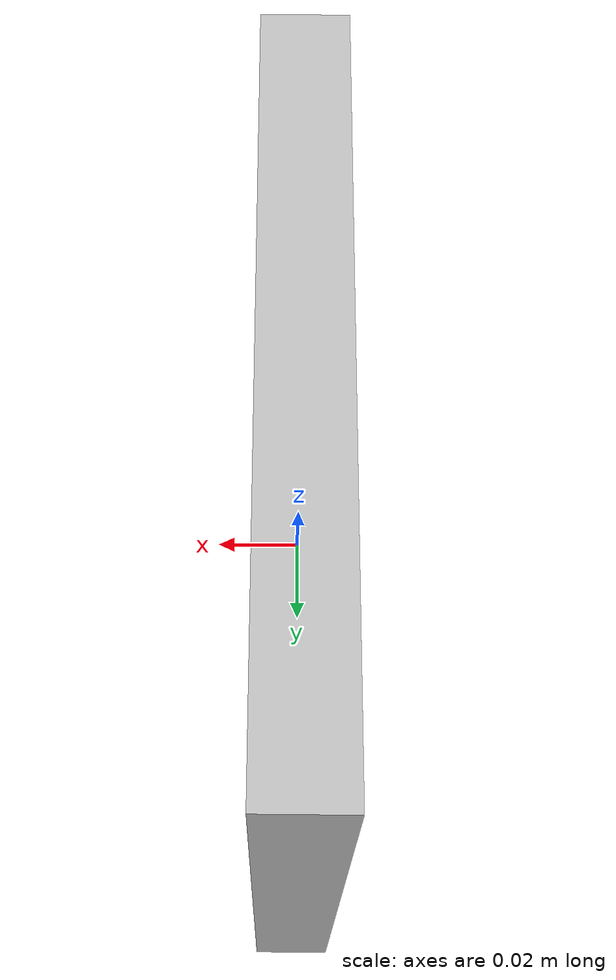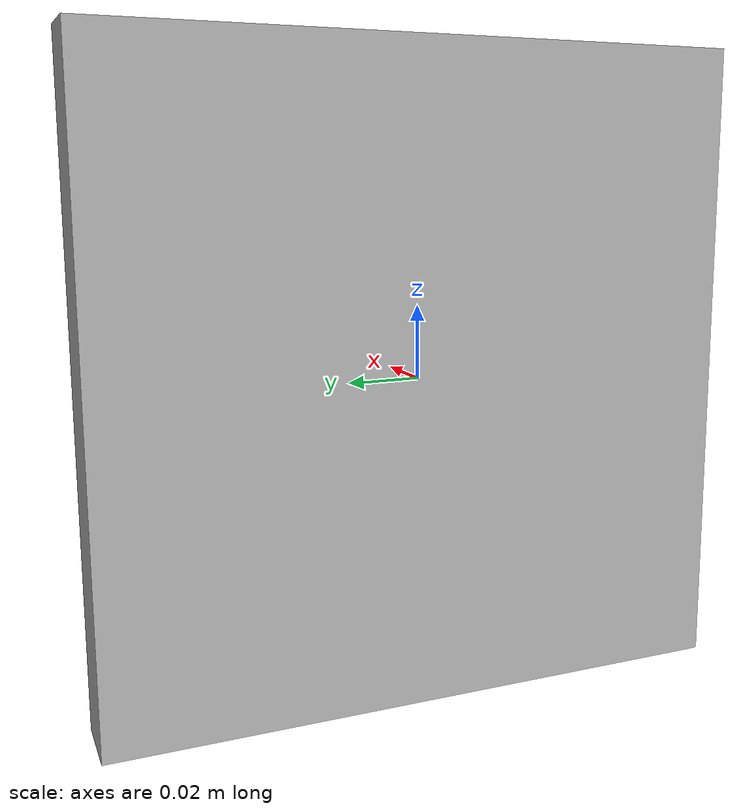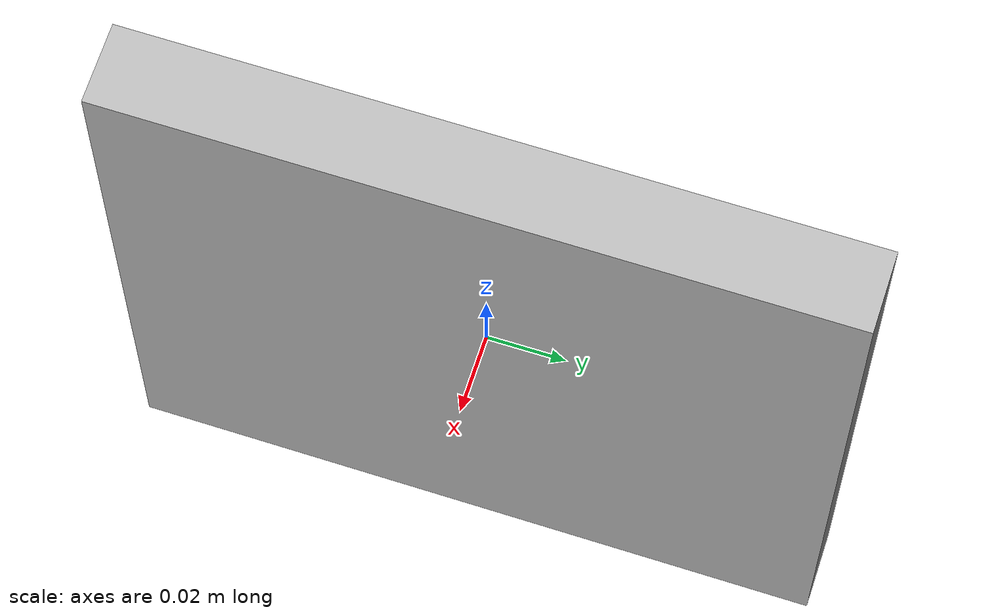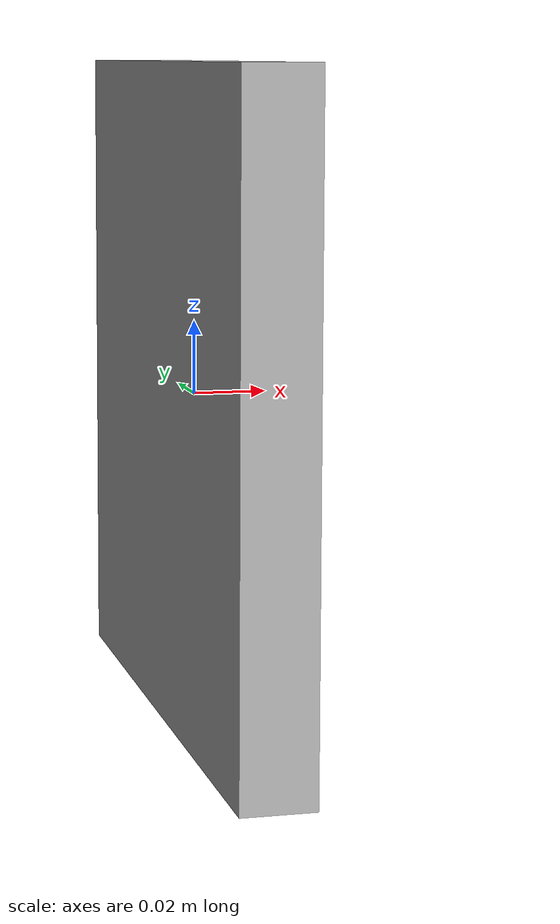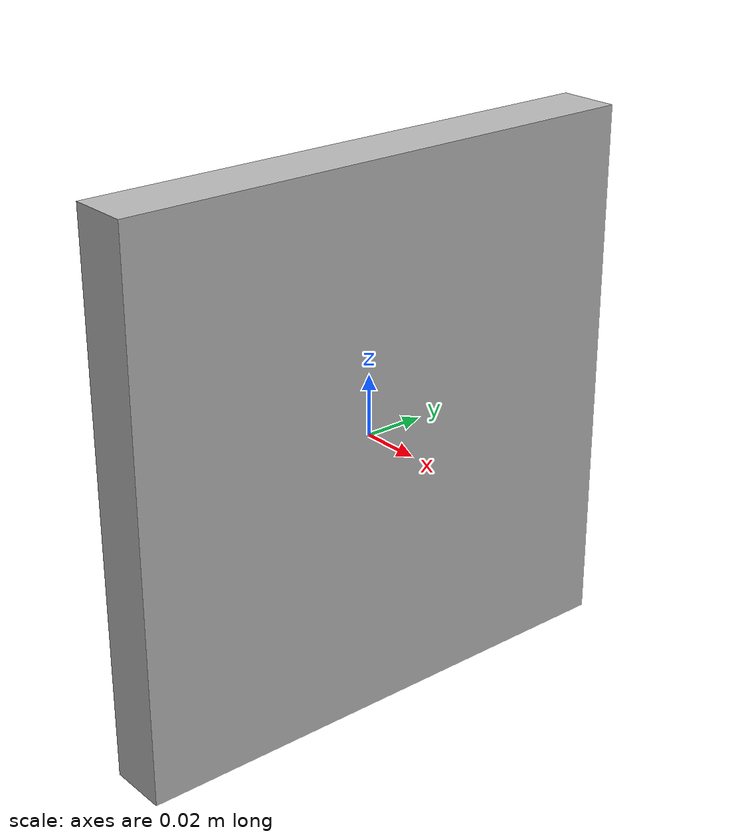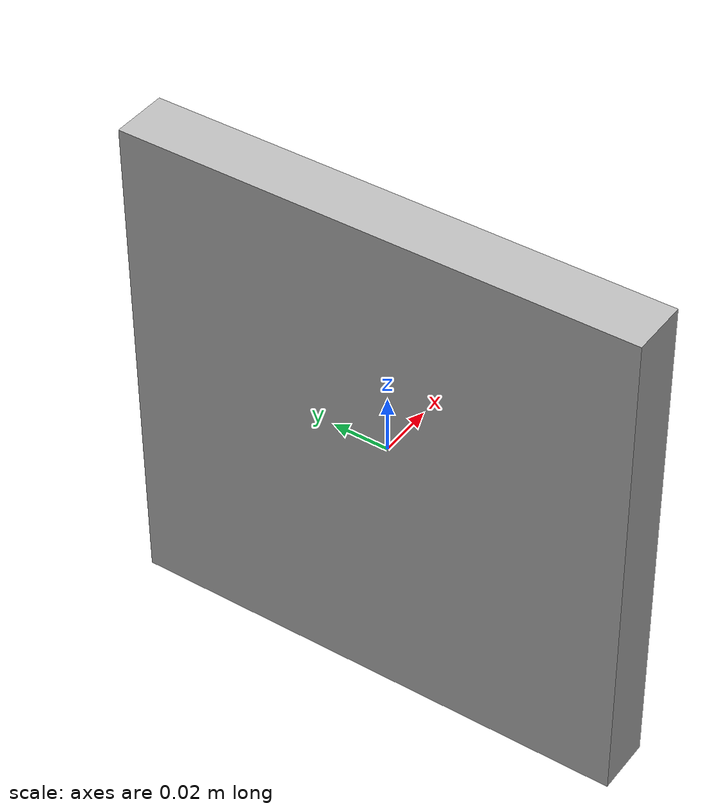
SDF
<?xml version="1.0" ?>
<sdf version="1.6">
  <model name="qr_cube">
    <static>true</static>
    <link name="link">
      <collision name="collision">
        <geometry>
          <box><size>0.02 0.18 0.18</size></box>
        </geometry>
      </collision>
      <visual name="visual">
        <geometry>
          <box><size>0.02 0.18 0.18</size></box>
        </geometry>
        <material>
          <script>
            <uri>model://qr_cube/materials/scripts</uri>
            <uri>model://qr_cube/materials/textures</uri>
            <name>QRCode/Marker</name>
          </script>
        </material>
      </visual>
    </link>
  </model>
</sdf>
